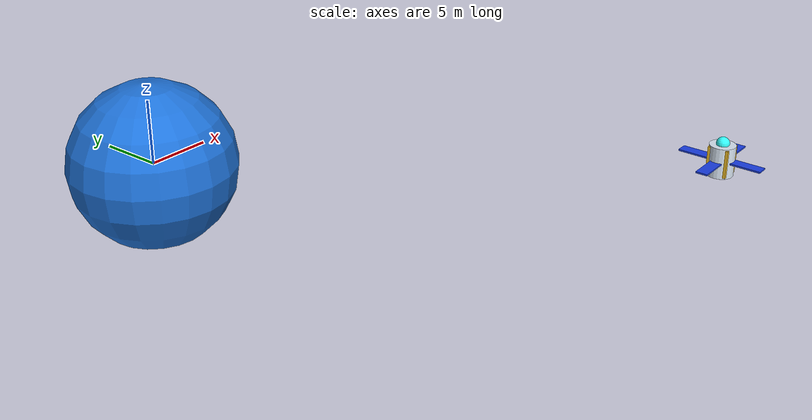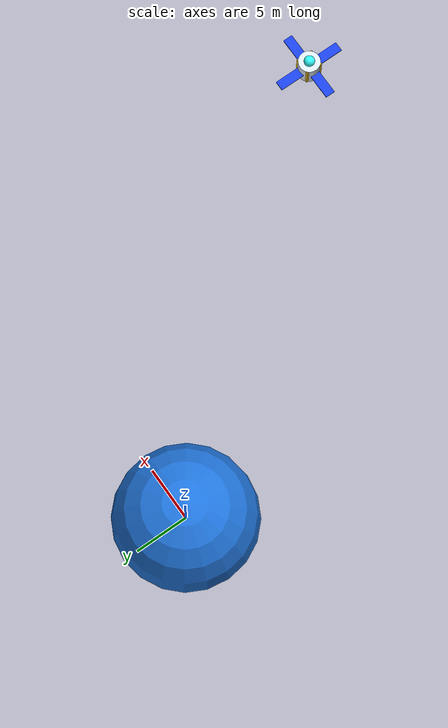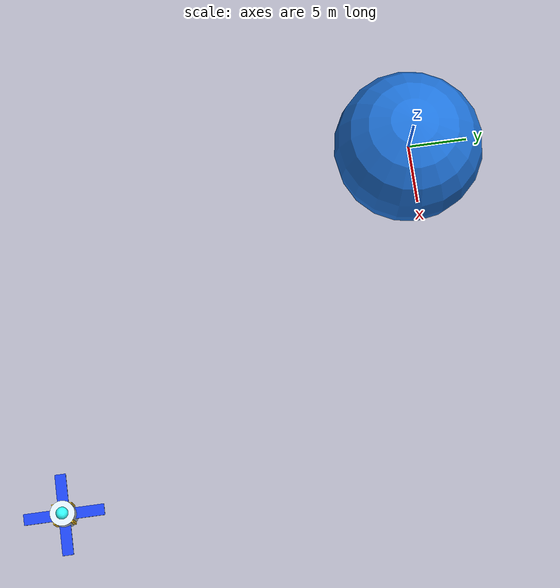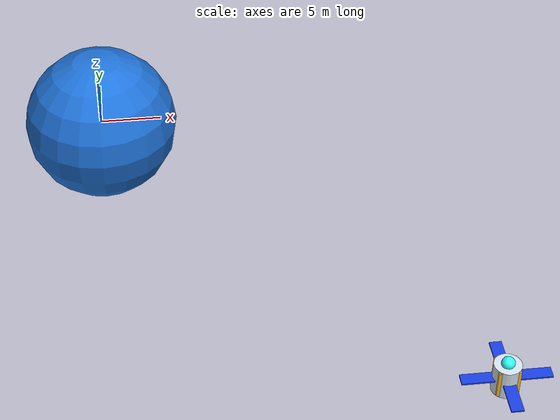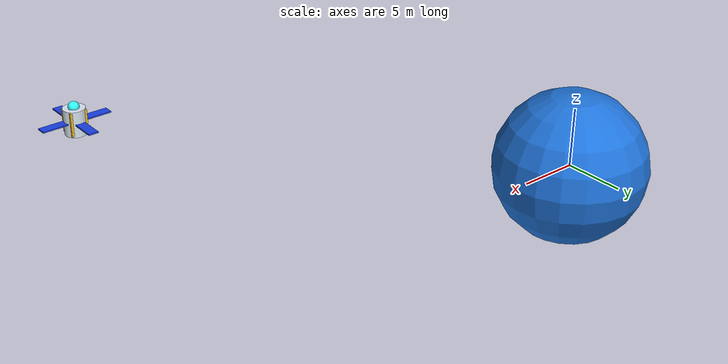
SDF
<sdf version="1.8">
 <world name="rps_earth_world">
  <physics name="1ms" type="ignored">
   <max_step_size>0.001</max_step_size>
   <real_time_factor>1.0</real_time_factor>
  </physics>
  <gravity>0 0 0</gravity>
  <scene>
   <ambient>0.0 0.0 0.0 1.0</ambient>
   <background>0.002 0.002 0.01 1.0</background>
   <grid>false</grid>
   <shadows>false</shadows>
  </scene>
  <plugin filename="gz-sim-physics-system" name="gz::sim::systems::Physics"/>
  <plugin filename="gz-sim-user-commands-system" name="gz::sim::systems::UserCommands"/>
  <plugin filename="gz-sim-scene-broadcaster-system" name="gz::sim::systems::SceneBroadcaster"/>
  <light type="directional" name="sun_light">
   <pose>200 100 150 0 0 0</pose>
   <diffuse>1.0 0.98 0.95 1</diffuse>
   <specular>0.6 0.6 0.6 1</specular>
   <direction>-0.8 -0.4 -0.6</direction>
  </light>
  <model name="earth_globe">
   <static>true</static>
   <link name="earth_link">
    <collision name="earth_col"><geometry><sphere><radius>6.378</radius></sphere></geometry></collision>
    <visual name="earth_surface">
     <geometry><sphere><radius>6.378</radius></sphere></geometry>
     <material>
      <ambient>0.08 0.32 0.65 1</ambient>
      <diffuse>0.12 0.45 0.85 1</diffuse>
      <specular>0.3 0.4 0.6 1</specular>
     </material>
    </visual>
   </link>
  </model>
  <model name="rps_geo_satellite">
   <pose>27.1 -32.3 0.0 0 0 0</pose>
   <link name="bus_geo">
    <visual name="v_bus">
     <geometry><box><size>1.6 1.6 2.2</size></box></geometry>
     <material>
      <ambient>0.85 0.65 0.1 1</ambient>
      <diffuse>0.95 0.75 0.15 1</diffuse>
      <specular>0.8 0.7 0.3 1</specular>
     </material>
    </visual>
    <visual name="v_solar">
     <geometry><box><size>6.5 0.9 0.12</size></box></geometry>
     <material><ambient>0.05 0.15 0.7 1</ambient><diffuse>0.1 0.25 0.9 1</diffuse></material>
    </visual>
    <visual name="v_marker">
     <pose>0 0 1.2 0 0 0</pose>
     <geometry><sphere><radius>0.4</radius></sphere></geometry>
     <material><ambient>0.9 0.1 0.1 1</ambient><diffuse>1.0 0.1 0.1 1</diffuse></material>
    </visual>
   </link>
   <plugin filename="libOrbitalMotionPlugin.so" name="brazilian_rps::OrbitalMotionPlugin">
    <semi_major_axis>42.164</semi_major_axis>
    <eccentricity>0.0</eccentricity>
    <inclination_deg>0.0</inclination_deg>
    <raan_deg>0.0</raan_deg>
    <arg_perigee_deg>0.0</arg_perigee_deg>
    <mean_anomaly_deg>310.0</mean_anomaly_deg>
    <time_scale>300.0</time_scale>
   </plugin>
  </model>
  <model name="rps_igso_satellite">
   <pose>27.1 -32.3 0.0 0 0 0</pose>
   <link name="bus_igso">
    <visual name="v_bus">
     <geometry><cylinder><radius>1.0</radius><length>2.4</length></cylinder></geometry>
     <material>
      <ambient>0.7 0.75 0.8 1</ambient>
      <diffuse>0.85 0.9 0.95 1</diffuse>
      <specular>0.9 0.9 0.9 1</specular>
     </material>
    </visual>
    <visual name="v_solar">
     <geometry><box><size>0.9 6.5 0.12</size></box></geometry>
     <material><ambient>0.05 0.15 0.7 1</ambient><diffuse>0.1 0.25 0.9 1</diffuse></material>
    </visual>
    <visual name="v_marker">
     <pose>0 0 1.3 0 0 0</pose>
     <geometry><sphere><radius>0.5</radius></sphere></geometry>
     <material><ambient>0.1 0.9 0.9 1</ambient><diffuse>0.2 1.0 1.0 1</diffuse></material>
    </visual>
   </link>
   <plugin filename="libOrbitalMotionPlugin.so" name="brazilian_rps::OrbitalMotionPlugin">
    <semi_major_axis>42.164</semi_major_axis>
    <eccentricity>0.06</eccentricity>
    <inclination_deg>29.0</inclination_deg>
    <raan_deg>310.0</raan_deg>
    <arg_perigee_deg>270.0</arg_perigee_deg>
    <mean_anomaly_deg>0.0</mean_anomaly_deg>
    <time_scale>300.0</time_scale>
   </plugin>
  </model>
 </world>
</sdf>
